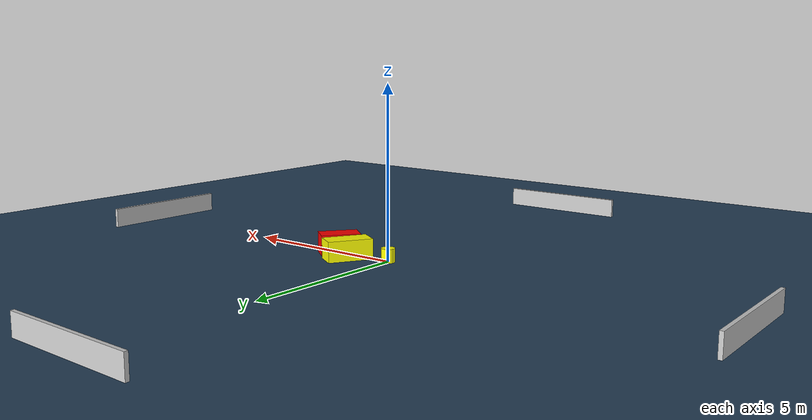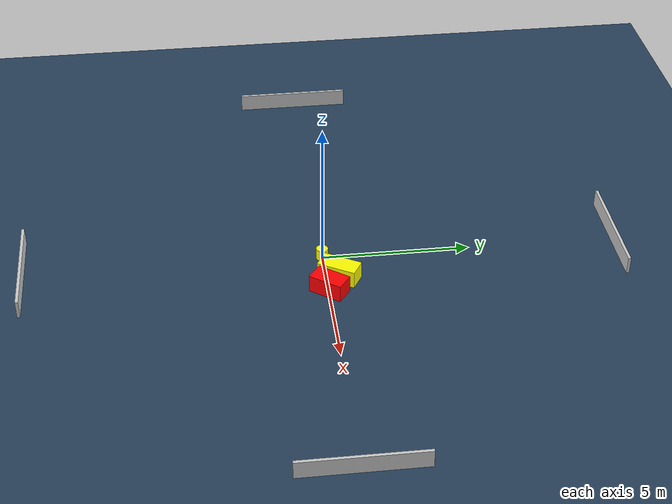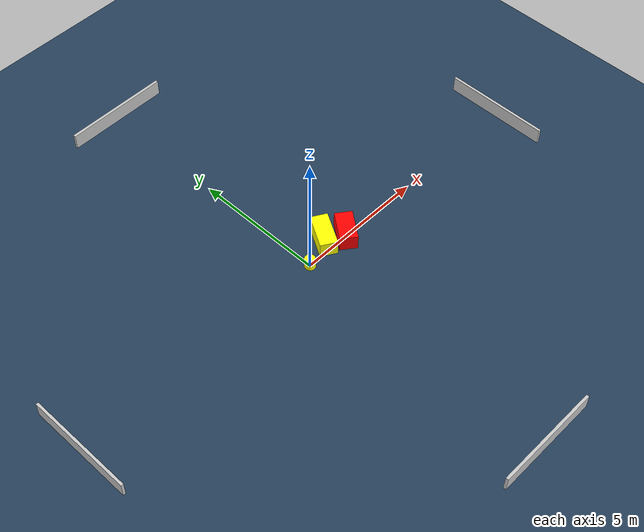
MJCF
<?xml version="1.0" ?>
<mujoco model="generated_environment">
  <option timestep="0.01" integrator="RK4" cone="elliptic"/>
  <default>
    <geom density="1"/>
  </default>
  <asset>
    <texture builtin="gradient" height="3072" name="skybox" rgb1="0.3 0.5 0.7" rgb2="0 0 0" type="skybox" width="512"/>
    <texture builtin="checker" height="300" name="groundplane" rgb1="0.2 0.3 0.4" rgb2="0.1 0.2 0.3" type="2d" width="300"/>
    <material name="groundplane" reflectance="0.2" texrepeat="5 5" texture="groundplane"/>
  </asset>
  <worldbody>
    <light dir="0 0 -1" directional="true" pos="0 0 1.5"/>
    <geom condim="3" friction="0.5 0.005 0.001" material="groundplane" name="floor" pos="0 0 0" size="0 0 0.05" type="plane"/>
    <body name="walls">
      <geom name="wall_1" condim="4" pos="-10.0 0.0 0.3" rgba="0.800000011920929 0.800000011920929 0.800000011920929 1.0" size="0.05 2.0 0.3" type="box"/>
      <geom name="wall_2" condim="4" pos="10.0 0.0 0.3" rgba="0.800000011920929 0.800000011920929 0.800000011920929 1.0" size="0.05 2.0 0.3" type="box"/>
      <geom name="wall_3" condim="4" pos="0.0 -10.0 0.3" rgba="0.800000011920929 0.800000011920929 0.800000011920929 1.0" size="2.0 0.05 0.3" type="box"/>
      <geom name="wall_4" condim="4" pos="0.0 10.0 0.3" rgba="0.800000011920929 0.800000011920929 0.800000011920929 1.0" size="2.0 0.05 0.3" type="box"/>
    </body>
    <body name="robot">
      <joint name="joint_x" type="slide" pos="0 0 0" axis="1 0 0"/>
      <joint name="joint_y" type="slide" pos="0 0 0" axis="0 1 0"/>
      <geom name="robot" type="cylinder" pos="0.0 0.0 0.2" size="0.2 0.2 0.0" mass="5.0" friction="1.0 0.005 0.0001" condim="4" rgba="1.0 1.0 0.0 1.0"/>
    </body>
    <body name="obstacle_1_movable">
      <geom name="obstacle_1_movable" condim="4" pos="1.1322074091522714 0.4415966286181531 0.3" euler="0 0 149.58820331100225" friction="0.0 0.005 0.001" rgba="1.0 1.0 0.0 1.0" size="0.32061133560942884 0.6596570649283297 0.3" type="box" mass="0.1"/>
      <joint type="free"/>
    </body>
    <body name="obstacle_2_static">
      <geom name="obstacle_2_static" condim="4" pos="1.8077689845728162 0.029759185436422784 0.3" euler="0 0 53.0080311240954" friction="0.0 0.005 0.001" rgba="1.0 0.0 0.0 1.0" size="0.5825970329779981 0.3246453223311935 0.3" type="box"/>
    </body>
  </worldbody>
  <actuator>
    <motor name="actuator_x" joint="joint_x" gear="1" ctrlrange="-1 1"/>
    <motor name="actuator_y" joint="joint_y" gear="1" ctrlrange="-1 1"/>
  </actuator>
</mujoco>
